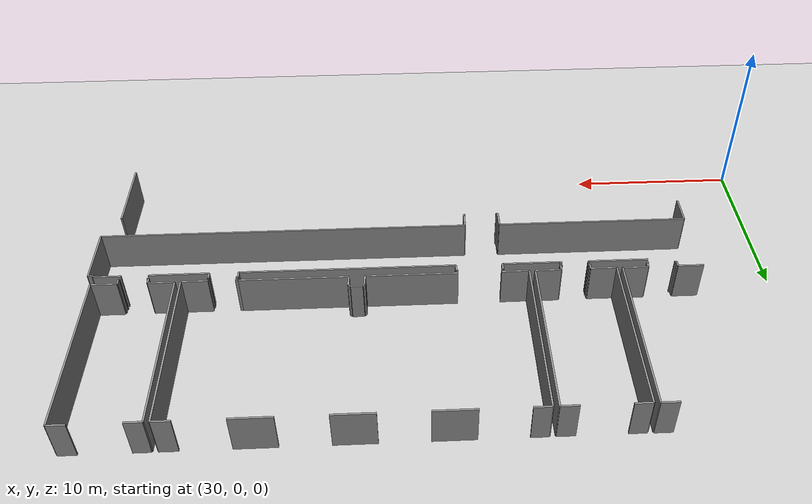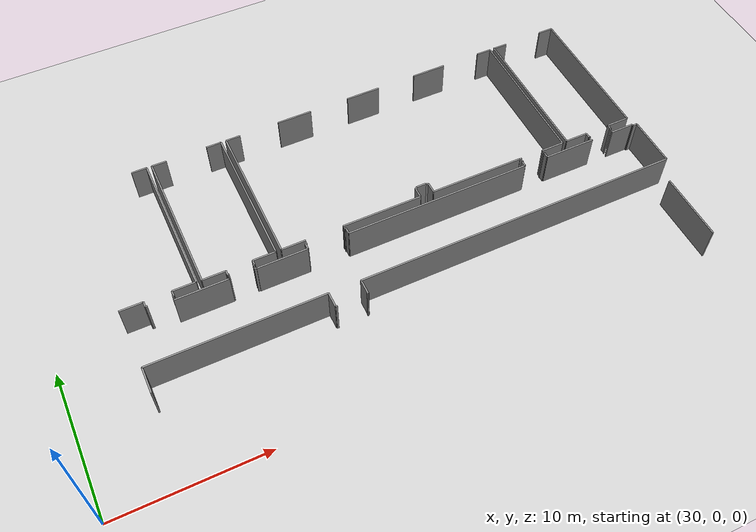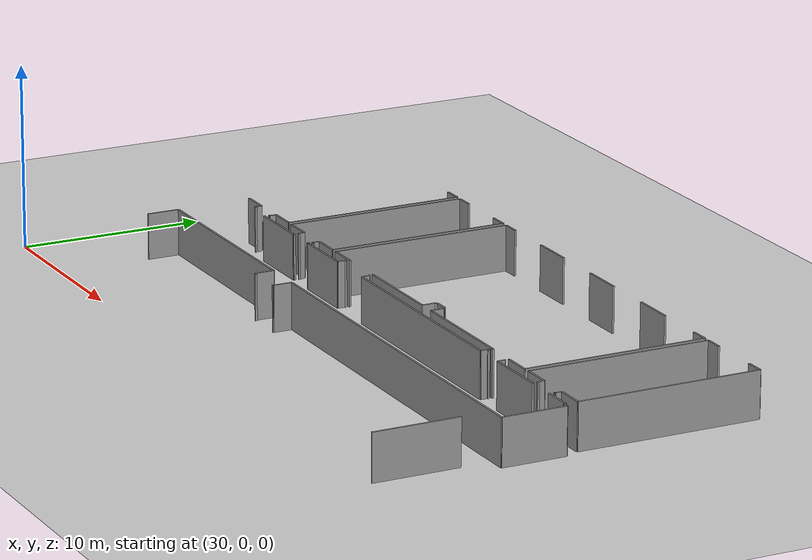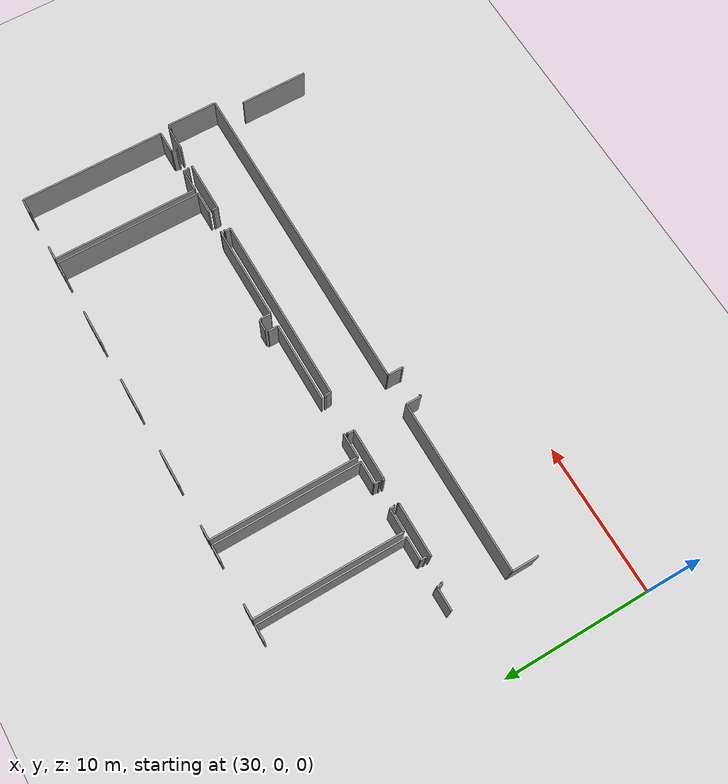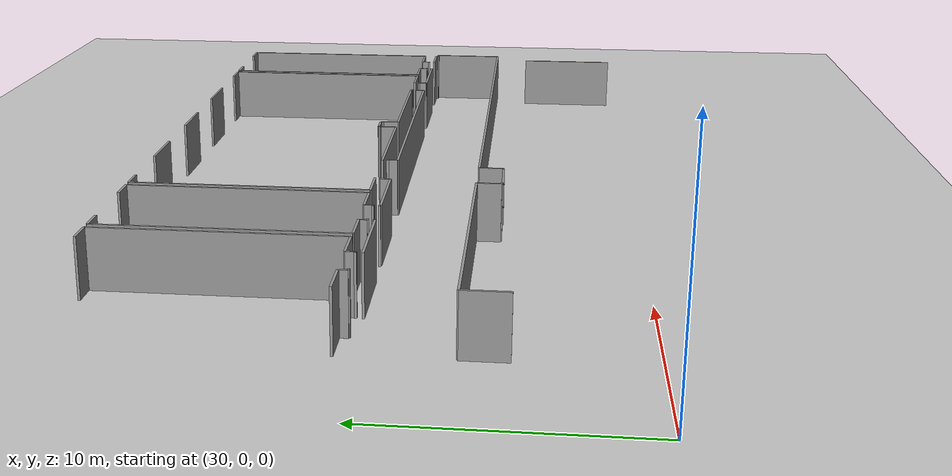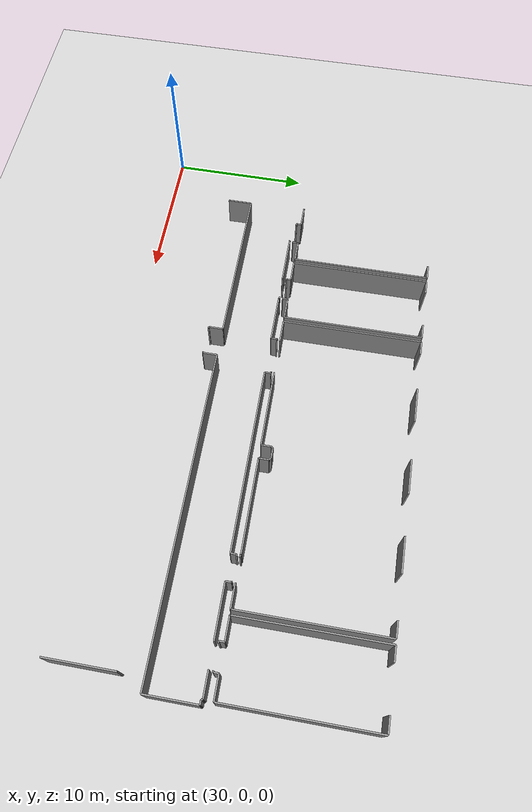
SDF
<sdf version="1.6">
 <world name="default">
  <model name="ground_plane">
   <static>1</static>
   <link name="link">
    <collision name="collision">
     <geometry><plane><normal>0 0 1</normal><size>100 100</size></plane></geometry>
     <surface><friction><ode><mu>100</mu><mu2>50</mu2></ode></friction></surface>
    </collision>
    <visual name="visual">
     <cast_shadows>0</cast_shadows>
     <geometry><plane><normal>0 0 1</normal><size>100 100</size></plane></geometry>
     <material>
      <script><uri>file://media/materials/scripts/gazebo.material</uri><name>Gazebo/Grey</name></script>
     </material>
    </visual>
   </link>
  </model>
  <model name="50055638">
   <static>1</static>
   <link name="Wall_572">
    <collision name="Wall_572_Collision">
     <geometry><box><size>1.04055058815 0.1 2.5</size></box></geometry>
     <pose>0.520275294073 0 1.25 0 0 0</pose>
    </collision>
    <visual name="Wall_572_Visual">
     <pose>0.520275294073 0 1.25 0 0 0</pose>
     <geometry><box><size>1.04055058815 0.1 2.5</size></box></geometry>
     <material>
      <script><uri>file://media/materials/scripts/gazebo.material</uri><name>Gazebo/Grey</name></script>
      <ambient>1 1 1 1</ambient>
     </material>
    </visual>
    <pose>109.051531848 -0.0 0 0 0 0.0</pose>
   </link>
   <link name="Wall_573">
    <collision name="Wall_573_Collision">
     <geometry><box><size>9.92005541469 0.1 2.5</size></box></geometry>
     <pose>4.96002770734 0 1.25 0 0 0</pose>
    </collision>
    <visual name="Wall_573_Visual">
     <pose>4.96002770734 0 1.25 0 0 0</pose>
     <geometry><box><size>9.92005541469 0.1 2.5</size></box></geometry>
     <material>
      <script><uri>file://media/materials/scripts/gazebo.material</uri><name>Gazebo/Grey</name></script>
      <ambient>1 1 1 1</ambient>
     </material>
    </visual>
    <pose>110.092082436 -0.0 0 0 0 -1.57079632679</pose>
   </link>
   <link name="Wall_574">
    <collision name="Wall_574_Collision">
     <geometry><box><size>1.52466652686 0.1 2.5</size></box></geometry>
     <pose>0.762333263429 0 1.25 0 0 0</pose>
    </collision>
    <visual name="Wall_574_Visual">
     <pose>0.762333263429 0 1.25 0 0 0</pose>
     <geometry><box><size>1.52466652686 0.1 2.5</size></box></geometry>
     <material>
      <script><uri>file://media/materials/scripts/gazebo.material</uri><name>Gazebo/Grey</name></script>
      <ambient>1 1 1 1</ambient>
     </material>
    </visual>
    <pose>110.092082436 -9.92005541469 0 0 0 3.14159265359</pose>
   </link>
   <link name="Wall_575">
    <collision name="Wall_575_Collision">
     <geometry><box><size>0.372142680114 0.1 2.5</size></box></geometry>
     <pose>0.186071340057 0 1.25 0 0 0</pose>
    </collision>
    <visual name="Wall_575_Visual">
     <pose>0.186071340057 0 1.25 0 0 0</pose>
     <geometry><box><size>0.372142680114 0.1 2.5</size></box></geometry>
     <material>
      <script><uri>file://media/materials/scripts/gazebo.material</uri><name>Gazebo/Grey</name></script>
      <ambient>1 1 1 1</ambient>
     </material>
    </visual>
    <pose>108.567415909 -9.92005541469 0 0 0 -1.57079632679</pose>
   </link>
   <link name="Wall_576">
    <collision name="Wall_576_Collision">
     <geometry><box><size>0.0939253553975 0.1 2.5</size></box></geometry>
     <pose>0.0469626776988 0 1.25 0 0 0</pose>
    </collision>
    <visual name="Wall_576_Visual">
     <pose>0.0469626776988 0 1.25 0 0 0</pose>
     <geometry><box><size>0.0939253553975 0.1 2.5</size></box></geometry>
     <material>
      <script><uri>file://media/materials/scripts/gazebo.material</uri><name>Gazebo/Grey</name></script>
      <ambient>1 1 1 1</ambient>
     </material>
    </visual>
    <pose>108.567415909 -10.2921980948 0 0 0 3.14159265359</pose>
   </link>
   <link name="Wall_577">
    <collision name="Wall_577_Collision">
     <geometry><box><size>0.124301755858 0.1 2.5</size></box></geometry>
     <pose>0.0621508779288 0 1.25 0 0 0</pose>
    </collision>
    <visual name="Wall_577_Visual">
     <pose>0.0621508779288 0 1.25 0 0 0</pose>
     <geometry><box><size>0.124301755858 0.1 2.5</size></box></geometry>
     <material>
      <script><uri>file://media/materials/scripts/gazebo.material</uri><name>Gazebo/Grey</name></script>
      <ambient>1 1 1 1</ambient>
     </material>
    </visual>
    <pose>106.927090284 -10.2921980948 0 0 0 3.14159265359</pose>
   </link>
   <link name="Wall_578">
    <collision name="Wall_578_Collision">
     <geometry><box><size>0.363372924332 0.1 2.5</size></box></geometry>
     <pose>0.181686462166 0 1.25 0 0 0</pose>
    </collision>
    <visual name="Wall_578_Visual">
     <pose>0.181686462166 0 1.25 0 0 0</pose>
     <geometry><box><size>0.363372924332 0.1 2.5</size></box></geometry>
     <material>
      <script><uri>file://media/materials/scripts/gazebo.material</uri><name>Gazebo/Grey</name></script>
      <ambient>1 1 1 1</ambient>
     </material>
    </visual>
    <pose>106.802788528 -10.2921980948 0 0 0 1.57079632679</pose>
   </link>
   <link name="Wall_579">
    <collision name="Wall_579_Collision">
     <geometry><box><size>1.53343746776 0.1 2.5</size></box></geometry>
     <pose>0.766718733882 0 1.25 0 0 0</pose>
    </collision>
    <visual name="Wall_579_Visual">
     <pose>0.766718733882 0 1.25 0 0 0</pose>
     <geometry><box><size>1.53343746776 0.1 2.5</size></box></geometry>
     <material>
      <script><uri>file://media/materials/scripts/gazebo.material</uri><name>Gazebo/Grey</name></script>
      <ambient>1 1 1 1</ambient>
     </material>
    </visual>
    <pose>106.802788528 -9.92882517047 0 0 0 3.14034938859</pose>
   </link>
   <link name="Wall_580">
    <collision name="Wall_580_Collision">
     <geometry><box><size>9.93186281052 0.1 2.5</size></box></geometry>
     <pose>4.96593140526 0 1.25 0 0 0</pose>
    </collision>
    <visual name="Wall_580_Visual">
     <pose>4.96593140526 0 1.25 0 0 0</pose>
     <geometry><box><size>9.93186281052 0.1 2.5</size></box></geometry>
     <material>
      <script><uri>file://media/materials/scripts/gazebo.material</uri><name>Gazebo/Grey</name></script>
      <ambient>1 1 1 1</ambient>
     </material>
    </visual>
    <pose>110.430671268 -9.94560209457 0 0 0 1.57079632679</pose>
   </link>
   <link name="Wall_581">
    <collision name="Wall_581_Collision">
     <geometry><box><size>1.00483607547 0.1 2.5</size></box></geometry>
     <pose>0.502418037735 0 1.25 0 0 0</pose>
    </collision>
    <visual name="Wall_581_Visual">
     <pose>0.502418037735 0 1.25 0 0 0</pose>
     <geometry><box><size>1.00483607547 0.1 2.5</size></box></geometry>
     <material>
      <script><uri>file://media/materials/scripts/gazebo.material</uri><name>Gazebo/Grey</name></script>
      <ambient>1 1 1 1</ambient>
     </material>
    </visual>
    <pose>110.430671268 -0.0137392840575 0 0 0 0.0</pose>
   </link>
   <link name="Wall_582">
    <collision name="Wall_582_Collision">
     <geometry><box><size>1.04093188188 0.1 2.5</size></box></geometry>
     <pose>0.520465940938 0 1.25 0 0 0</pose>
    </collision>
    <visual name="Wall_582_Visual">
     <pose>0.520465940938 0 1.25 0 0 0</pose>
     <geometry><box><size>1.04093188188 0.1 2.5</size></box></geometry>
     <material>
      <script><uri>file://media/materials/scripts/gazebo.material</uri><name>Gazebo/Grey</name></script>
      <ambient>1 1 1 1</ambient>
     </material>
    </visual>
    <pose>114.210817303 -0.0137392840575 0 0 0 0.0</pose>
   </link>
   <link name="Wall_583">
    <collision name="Wall_583_Collision">
     <geometry><box><size>9.91051036166 0.1 2.5</size></box></geometry>
     <pose>4.95525518083 0 1.25 0 0 0</pose>
    </collision>
    <visual name="Wall_583_Visual">
     <pose>4.95525518083 0 1.25 0 0 0</pose>
     <geometry><box><size>9.91051036166 0.1 2.5</size></box></geometry>
     <material>
      <script><uri>file://media/materials/scripts/gazebo.material</uri><name>Gazebo/Grey</name></script>
      <ambient>1 1 1 1</ambient>
     </material>
    </visual>
    <pose>115.251749185 -0.0137392840575 0 0 0 -1.57079632679</pose>
   </link>
   <link name="Wall_584">
    <collision name="Wall_584_Collision">
     <geometry><box><size>1.54042666768 0.1 2.5</size></box></geometry>
     <pose>0.770213333842 0 1.25 0 0 0</pose>
    </collision>
    <visual name="Wall_584_Visual">
     <pose>0.770213333842 0 1.25 0 0 0</pose>
     <geometry><box><size>1.54042666768 0.1 2.5</size></box></geometry>
     <material>
      <script><uri>file://media/materials/scripts/gazebo.material</uri><name>Gazebo/Grey</name></script>
      <ambient>1 1 1 1</ambient>
     </material>
    </visual>
    <pose>115.251749185 -9.92424964571 0 0 0 3.14159265359</pose>
   </link>
   <link name="Wall_585">
    <collision name="Wall_585_Collision">
     <geometry><box><size>0.348629566787 0.1 2.5</size></box></geometry>
     <pose>0.174314783393 0 1.25 0 0 0</pose>
    </collision>
    <visual name="Wall_585_Visual">
     <pose>0.174314783393 0 1.25 0 0 0</pose>
     <geometry><box><size>0.348629566787 0.1 2.5</size></box></geometry>
     <material>
      <script><uri>file://media/materials/scripts/gazebo.material</uri><name>Gazebo/Grey</name></script>
      <ambient>1 1 1 1</ambient>
     </material>
    </visual>
    <pose>113.711322517 -9.92424964571 0 0 0 -1.57079632679</pose>
   </link>
   <link name="Wall_586">
    <collision name="Wall_586_Collision">
     <geometry><box><size>0.104220286097 0.1 2.5</size></box></geometry>
     <pose>0.0521101430487 0 1.25 0 0 0</pose>
    </collision>
    <visual name="Wall_586_Visual">
     <pose>0.0521101430487 0 1.25 0 0 0</pose>
     <geometry><box><size>0.104220286097 0.1 2.5</size></box></geometry>
     <material>
      <script><uri>file://media/materials/scripts/gazebo.material</uri><name>Gazebo/Grey</name></script>
      <ambient>1 1 1 1</ambient>
     </material>
    </visual>
    <pose>113.711322517 -10.2728792125 0 0 0 3.14159265359</pose>
   </link>
   <link name="Wall_587">
    <collision name="Wall_587_Collision">
     <geometry><box><size>0.0953234324061 0.1 2.5</size></box></geometry>
     <pose>0.0476617162031 0 1.25 0 0 0</pose>
    </collision>
    <visual name="Wall_587_Visual">
     <pose>0.0476617162031 0 1.25 0 0 0</pose>
     <geometry><box><size>0.0953234324061 0.1 2.5</size></box></geometry>
     <material>
      <script><uri>file://media/materials/scripts/gazebo.material</uri><name>Gazebo/Grey</name></script>
      <ambient>1 1 1 1</ambient>
     </material>
    </visual>
    <pose>112.078114375 -10.2728792125 0 0 0 3.14159265359</pose>
   </link>
   <link name="Wall_588">
    <collision name="Wall_588_Collision">
     <geometry><box><size>0.32486225764 0.1 2.5</size></box></geometry>
     <pose>0.16243112882 0 1.25 0 0 0</pose>
    </collision>
    <visual name="Wall_588_Visual">
     <pose>0.16243112882 0 1.25 0 0 0</pose>
     <geometry><box><size>0.32486225764 0.1 2.5</size></box></geometry>
     <material>
      <script><uri>file://media/materials/scripts/gazebo.material</uri><name>Gazebo/Grey</name></script>
      <ambient>1 1 1 1</ambient>
     </material>
    </visual>
    <pose>111.982790943 -10.2728792125 0 0 0 1.57079632679</pose>
   </link>
   <link name="Wall_589">
    <collision name="Wall_589_Collision">
     <geometry><box><size>1.55212155397 0.1 2.5</size></box></geometry>
     <pose>0.776060776984 0 1.25 0 0 0</pose>
    </collision>
    <visual name="Wall_589_Visual">
     <pose>0.776060776984 0 1.25 0 0 0</pose>
     <geometry><box><size>1.55212155397 0.1 2.5</size></box></geometry>
     <material>
      <script><uri>file://media/materials/scripts/gazebo.material</uri><name>Gazebo/Grey</name></script>
      <ambient>1 1 1 1</ambient>
     </material>
    </visual>
    <pose>111.982790943 -9.94801695486 0 0 0 3.14003680814</pose>
   </link>
   <link name="Wall_590">
    <collision name="Wall_590_Collision">
     <geometry><box><size>9.91488252976 0.1 2.5</size></box></geometry>
     <pose>4.95744126488 0 1.25 0 0 0</pose>
    </collision>
    <visual name="Wall_590_Visual">
     <pose>4.95744126488 0 1.25 0 0 0</pose>
     <geometry><box><size>9.91488252976 0.1 2.5</size></box></geometry>
     <material>
      <script><uri>file://media/materials/scripts/gazebo.material</uri><name>Gazebo/Grey</name></script>
      <ambient>1 1 1 1</ambient>
     </material>
    </visual>
    <pose>115.601268437 -9.92780838719 0 0 0 1.57079632679</pose>
   </link>
   <link name="Wall_591">
    <collision name="Wall_591_Collision">
     <geometry><box><size>1.00026055072 0.1 2.5</size></box></geometry>
     <pose>0.500130275358 0 1.25 0 0 0</pose>
    </collision>
    <visual name="Wall_591_Visual">
     <pose>0.500130275358 0 1.25 0 0 0</pose>
     <geometry><box><size>1.00026055072 0.1 2.5</size></box></geometry>
     <material>
      <script><uri>file://media/materials/scripts/gazebo.material</uri><name>Gazebo/Grey</name></script>
      <ambient>1 1 1 1</ambient>
     </material>
    </visual>
    <pose>115.601268437 -0.0129258574343 0 0 0 0.0</pose>
   </link>
   <link name="Wall_592">
    <collision name="Wall_592_Collision">
     <geometry><box><size>2.41358930852 0.1 2.5</size></box></geometry>
     <pose>1.20679465426 0 1.25 0 0 0</pose>
    </collision>
    <visual name="Wall_592_Visual">
     <pose>1.20679465426 0 1.25 0 0 0</pose>
     <geometry><box><size>2.41358930852 0.1 2.5</size></box></geometry>
     <material>
      <script><uri>file://media/materials/scripts/gazebo.material</uri><name>Gazebo/Grey</name></script>
      <ambient>1 1 1 1</ambient>
     </material>
    </visual>
    <pose>119.354469716 -0.0129258574343 0 0 0 0.0</pose>
   </link>
   <link name="Wall_593">
    <collision name="Wall_593_Collision">
     <geometry><box><size>2.39198266385 0.1 2.5</size></box></geometry>
     <pose>1.19599133192 0 1.25 0 0 0</pose>
    </collision>
    <visual name="Wall_593_Visual">
     <pose>1.19599133192 0 1.25 0 0 0</pose>
     <geometry><box><size>2.39198266385 0.1 2.5</size></box></geometry>
     <material>
      <script><uri>file://media/materials/scripts/gazebo.material</uri><name>Gazebo/Grey</name></script>
      <ambient>1 1 1 1</ambient>
     </material>
    </visual>
    <pose>124.532438564 -0.0129258574343 0 0 0 0.0</pose>
   </link>
   <link name="Wall_594">
    <collision name="Wall_594_Collision">
     <geometry><box><size>2.37291797736 0.1 2.5</size></box></geometry>
     <pose>1.18645898868 0 1.25 0 0 0</pose>
    </collision>
    <visual name="Wall_594_Visual">
     <pose>1.18645898868 0 1.25 0 0 0</pose>
     <geometry><box><size>2.37291797736 0.1 2.5</size></box></geometry>
     <material>
      <script><uri>file://media/materials/scripts/gazebo.material</uri><name>Gazebo/Grey</name></script>
      <ambient>1 1 1 1</ambient>
     </material>
    </visual>
    <pose>129.686258809 -0.0129258574343 0 0 0 0.0</pose>
   </link>
   <link name="Wall_595">
    <collision name="Wall_595_Collision">
     <geometry><box><size>1.05364167286 0.1 2.5</size></box></geometry>
     <pose>0.526820836431 0 1.25 0 0 0</pose>
    </collision>
    <visual name="Wall_595_Visual">
     <pose>0.526820836431 0 1.25 0 0 0</pose>
     <geometry><box><size>1.05364167286 0.1 2.5</size></box></geometry>
     <material>
      <script><uri>file://media/materials/scripts/gazebo.material</uri><name>Gazebo/Grey</name></script>
      <ambient>1 1 1 1</ambient>
     </material>
    </visual>
    <pose>134.814659473 -0.0129258574343 0 0 0 0.0</pose>
   </link>
   <link name="Wall_596">
    <collision name="Wall_596_Collision">
     <geometry><box><size>9.93648917444 0.1 2.5</size></box></geometry>
     <pose>4.96824458722 0 1.25 0 0 0</pose>
    </collision>
    <visual name="Wall_596_Visual">
     <pose>4.96824458722 0 1.25 0 0 0</pose>
     <geometry><box><size>9.93648917444 0.1 2.5</size></box></geometry>
     <material>
      <script><uri>file://media/materials/scripts/gazebo.material</uri><name>Gazebo/Grey</name></script>
      <ambient>1 1 1 1</ambient>
     </material>
    </visual>
    <pose>135.868301146 -0.0129258574343 0 0 0 -1.57079632679</pose>
   </link>
   <link name="Wall_597">
    <collision name="Wall_597_Collision">
     <geometry><box><size>1.57982701974 0.1 2.5</size></box></geometry>
     <pose>0.789913509872 0 1.25 0 0 0</pose>
    </collision>
    <visual name="Wall_597_Visual">
     <pose>0.789913509872 0 1.25 0 0 0</pose>
     <geometry><box><size>1.57982701974 0.1 2.5</size></box></geometry>
     <material>
      <script><uri>file://media/materials/scripts/gazebo.material</uri><name>Gazebo/Grey</name></script>
      <ambient>1 1 1 1</ambient>
     </material>
    </visual>
    <pose>135.868301146 -9.94941503187 0 0 0 3.14159265359</pose>
   </link>
   <link name="Wall_598">
    <collision name="Wall_598_Collision">
     <geometry><box><size>0.169040220134 0.1 2.5</size></box></geometry>
     <pose>0.0845201100668 0 1.25 0 0 0</pose>
    </collision>
    <visual name="Wall_598_Visual">
     <pose>0.0845201100668 0 1.25 0 0 0</pose>
     <geometry><box><size>0.169040220134 0.1 2.5</size></box></geometry>
     <material>
      <script><uri>file://media/materials/scripts/gazebo.material</uri><name>Gazebo/Grey</name></script>
      <ambient>1 1 1 1</ambient>
     </material>
    </visual>
    <pose>132.718814939 -9.94941503187 0 0 0 3.14159265359</pose>
   </link>
   <link name="Wall_599">
    <collision name="Wall_599_Collision">
     <geometry><box><size>0.0275802464428 0.1 2.5</size></box></geometry>
     <pose>0.0137901232214 0 1.25 0 0 0</pose>
    </collision>
    <visual name="Wall_599_Visual">
     <pose>0.0137901232214 0 1.25 0 0 0</pose>
     <geometry><box><size>0.0275802464428 0.1 2.5</size></box></geometry>
     <material>
      <script><uri>file://media/materials/scripts/gazebo.material</uri><name>Gazebo/Grey</name></script>
      <ambient>1 1 1 1</ambient>
     </material>
    </visual>
    <pose>132.549774719 -9.94941503187 0 0 0 1.57079632679</pose>
   </link>
   <link name="Wall_600">
    <collision name="Wall_600_Collision">
     <geometry><box><size>6.38412801301 0.1 2.5</size></box></geometry>
     <pose>3.19206400651 0 1.25 0 0 0</pose>
    </collision>
    <visual name="Wall_600_Visual">
     <pose>3.19206400651 0 1.25 0 0 0</pose>
     <geometry><box><size>6.38412801301 0.1 2.5</size></box></geometry>
     <material>
      <script><uri>file://media/materials/scripts/gazebo.material</uri><name>Gazebo/Grey</name></script>
      <ambient>1 1 1 1</ambient>
     </material>
    </visual>
    <pose>132.549774719 -9.92183478543 0 0 0 3.14159265359</pose>
   </link>
   <link name="Wall_601">
    <collision name="Wall_601_Collision">
     <geometry><box><size>0.699673993861 0.1 2.5</size></box></geometry>
     <pose>0.349836996931 0 1.25 0 0 0</pose>
    </collision>
    <visual name="Wall_601_Visual">
     <pose>0.349836996931 0 1.25 0 0 0</pose>
     <geometry><box><size>0.699673993861 0.1 2.5</size></box></geometry>
     <material>
      <script><uri>file://media/materials/scripts/gazebo.material</uri><name>Gazebo/Grey</name></script>
      <ambient>1 1 1 1</ambient>
     </material>
    </visual>
    <pose>126.165646706 -9.92183478543 0 0 0 1.57079632679</pose>
   </link>
   <link name="Wall_602">
    <collision name="Wall_602_Collision">
     <geometry><box><size>0.172348889862 0.1 2.5</size></box></geometry>
     <pose>0.086174444931 0 1.25 0 0 0</pose>
    </collision>
    <visual name="Wall_602_Visual">
     <pose>0.086174444931 0 1.25 0 0 0</pose>
     <geometry><box><size>0.172348889862 0.1 2.5</size></box></geometry>
     <material>
      <script><uri>file://media/materials/scripts/gazebo.material</uri><name>Gazebo/Grey</name></script>
      <ambient>1 1 1 1</ambient>
     </material>
    </visual>
    <pose>126.165646706 -9.22216079157 0 0 0 2.43344630464</pose>
   </link>
   <link name="Wall_603">
    <collision name="Wall_603_Collision">
     <geometry><box><size>0.700309483411 0.1 2.5</size></box></geometry>
     <pose>0.350154741705 0 1.25 0 0 0</pose>
    </collision>
    <visual name="Wall_603_Visual">
     <pose>0.350154741705 0 1.25 0 0 0</pose>
     <geometry><box><size>0.700309483411 0.1 2.5</size></box></geometry>
     <material>
      <script><uri>file://media/materials/scripts/gazebo.material</uri><name>Gazebo/Grey</name></script>
      <ambient>1 1 1 1</ambient>
     </material>
    </visual>
    <pose>126.034735859 -9.11006043506 0 0 0 3.14159265359</pose>
   </link>
   <link name="Wall_604">
    <collision name="Wall_604_Collision">
     <geometry><box><size>0.160254740128 0.1 2.5</size></box></geometry>
     <pose>0.080127370064 0 1.25 0 0 0</pose>
    </collision>
    <visual name="Wall_604_Visual">
     <pose>0.080127370064 0 1.25 0 0 0</pose>
     <geometry><box><size>0.160254740128 0.1 2.5</size></box></geometry>
     <material>
      <script><uri>file://media/materials/scripts/gazebo.material</uri><name>Gazebo/Grey</name></script>
      <ambient>1 1 1 1</ambient>
     </material>
    </visual>
    <pose>125.334426375 -9.11006043506 0 0 0 -2.34329559822</pose>
   </link>
   <link name="Wall_605">
    <collision name="Wall_605_Collision">
     <geometry><box><size>0.696623644024 0.1 2.5</size></box></geometry>
     <pose>0.348311822012 0 1.25 0 0 0</pose>
    </collision>
    <visual name="Wall_605_Visual">
     <pose>0.348311822012 0 1.25 0 0 0</pose>
     <geometry><box><size>0.696623644024 0.1 2.5</size></box></geometry>
     <material>
      <script><uri>file://media/materials/scripts/gazebo.material</uri><name>Gazebo/Grey</name></script>
      <ambient>1 1 1 1</ambient>
     </material>
    </visual>
    <pose>125.222580215 -9.22482984767 0 0 0 -1.57079632679</pose>
   </link>
   <link name="Wall_606">
    <collision name="Wall_606_Collision">
     <geometry><box><size>5.44995837543 0.1 2.5</size></box></geometry>
     <pose>2.72497918772 0 1.25 0 0 0</pose>
    </collision>
    <visual name="Wall_606_Visual">
     <pose>2.72497918772 0 1.25 0 0 0</pose>
     <geometry><box><size>5.44995837543 0.1 2.5</size></box></geometry>
     <material>
      <script><uri>file://media/materials/scripts/gazebo.material</uri><name>Gazebo/Grey</name></script>
      <ambient>1 1 1 1</ambient>
     </material>
    </visual>
    <pose>125.222580215 -9.9214534917 0 0 0 3.14159265359</pose>
   </link>
   <link name="Wall_607">
    <collision name="Wall_607_Collision">
     <geometry><box><size>1.63322050546 0.1 2.5</size></box></geometry>
     <pose>0.816610252728 0 1.25 0 0 0</pose>
    </collision>
    <visual name="Wall_607_Visual">
     <pose>0.816610252728 0 1.25 0 0 0</pose>
     <geometry><box><size>1.63322050546 0.1 2.5</size></box></geometry>
     <material>
      <script><uri>file://media/materials/scripts/gazebo.material</uri><name>Gazebo/Grey</name></script>
      <ambient>1 1 1 1</ambient>
     </material>
    </visual>
    <pose>117.234476579 -9.9214534917 0 0 0 -3.13770162264</pose>
   </link>
   <link name="Wall_608">
    <collision name="Wall_608_Collision">
     <geometry><box><size>9.91394200522 0.1 2.5</size></box></geometry>
     <pose>4.95697100261 0 1.25 0 0 0</pose>
    </collision>
    <visual name="Wall_608_Visual">
     <pose>4.95697100261 0 1.25 0 0 0</pose>
     <geometry><box><size>9.91394200522 0.1 2.5</size></box></geometry>
     <material>
      <script><uri>file://media/materials/scripts/gazebo.material</uri><name>Gazebo/Grey</name></script>
      <ambient>1 1 1 1</ambient>
     </material>
    </visual>
    <pose>136.202568649 -9.9241225478 0 0 0 1.57079632679</pose>
   </link>
   <link name="Wall_609">
    <collision name="Wall_609_Collision">
     <geometry><box><size>0.99517663432 0.1 2.5</size></box></geometry>
     <pose>0.49758831716 0 1.25 0 0 0</pose>
    </collision>
    <visual name="Wall_609_Visual">
     <pose>0.49758831716 0 1.25 0 0 0</pose>
     <geometry><box><size>0.99517663432 0.1 2.5</size></box></geometry>
     <material>
      <script><uri>file://media/materials/scripts/gazebo.material</uri><name>Gazebo/Grey</name></script>
      <ambient>1 1 1 1</ambient>
     </material>
    </visual>
    <pose>136.202568649 -0.010180542581 0 0 0 0.0</pose>
   </link>
   <link name="Wall_610">
    <collision name="Wall_610_Collision">
     <geometry><box><size>1.03076404909 0.1 2.5</size></box></geometry>
     <pose>0.515382024543 0 1.25 0 0 0</pose>
    </collision>
    <visual name="Wall_610_Visual">
     <pose>0.515382024543 0 1.25 0 0 0</pose>
     <geometry><box><size>1.03076404909 0.1 2.5</size></box></geometry>
     <material>
      <script><uri>file://media/materials/scripts/gazebo.material</uri><name>Gazebo/Grey</name></script>
      <ambient>1 1 1 1</ambient>
     </material>
    </visual>
    <pose>140.002796154 -0.010180542581 0 0 0 0.0</pose>
   </link>
   <link name="Wall_611">
    <collision name="Wall_611_Collision">
     <geometry><box><size>9.92067819445 0.1 2.5</size></box></geometry>
     <pose>4.96033909722 0 1.25 0 0 0</pose>
    </collision>
    <visual name="Wall_611_Visual">
     <pose>4.96033909722 0 1.25 0 0 0</pose>
     <geometry><box><size>9.92067819445 0.1 2.5</size></box></geometry>
     <material>
      <script><uri>file://media/materials/scripts/gazebo.material</uri><name>Gazebo/Grey</name></script>
      <ambient>1 1 1 1</ambient>
     </material>
    </visual>
    <pose>141.033560203 -0.010180542581 0 0 0 -1.57079632679</pose>
   </link>
   <link name="Wall_612">
    <collision name="Wall_612_Collision">
     <geometry><box><size>1.54296862588 0.1 2.5</size></box></geometry>
     <pose>0.77148431294 0 1.25 0 0 0</pose>
    </collision>
    <visual name="Wall_612_Visual">
     <pose>0.77148431294 0 1.25 0 0 0</pose>
     <geometry><box><size>1.54296862588 0.1 2.5</size></box></geometry>
     <material>
      <script><uri>file://media/materials/scripts/gazebo.material</uri><name>Gazebo/Grey</name></script>
      <ambient>1 1 1 1</ambient>
     </material>
    </visual>
    <pose>141.033560203 -9.93085873703 0 0 0 3.14159265359</pose>
   </link>
   <link name="Wall_613">
    <collision name="Wall_613_Collision">
     <geometry><box><size>0.350536035435 0.1 2.5</size></box></geometry>
     <pose>0.175268017717 0 1.25 0 0 0</pose>
    </collision>
    <visual name="Wall_613_Visual">
     <pose>0.175268017717 0 1.25 0 0 0</pose>
     <geometry><box><size>0.350536035435 0.1 2.5</size></box></geometry>
     <material>
      <script><uri>file://media/materials/scripts/gazebo.material</uri><name>Gazebo/Grey</name></script>
      <ambient>1 1 1 1</ambient>
     </material>
    </visual>
    <pose>139.490591577 -9.93085873703 0 0 0 -1.57079632679</pose>
   </link>
   <link name="Wall_614">
    <collision name="Wall_614_Collision">
     <geometry><box><size>0.0902395160111 0.1 2.5</size></box></geometry>
     <pose>0.0451197580056 0 1.25 0 0 0</pose>
    </collision>
    <visual name="Wall_614_Visual">
     <pose>0.0451197580056 0 1.25 0 0 0</pose>
     <geometry><box><size>0.0902395160111 0.1 2.5</size></box></geometry>
     <material>
      <script><uri>file://media/materials/scripts/gazebo.material</uri><name>Gazebo/Grey</name></script>
      <ambient>1 1 1 1</ambient>
     </material>
    </visual>
    <pose>139.490591577 -10.2813947725 0 0 0 3.14159265359</pose>
   </link>
   <link name="Wall_615">
    <collision name="Wall_615_Collision">
     <geometry><box><size>0.1016783279 0.1 2.5</size></box></geometry>
     <pose>0.05083916395 0 1.25 0 0 0</pose>
    </collision>
    <visual name="Wall_615_Visual">
     <pose>0.05083916395 0 1.25 0 0 0</pose>
     <geometry><box><size>0.1016783279 0.1 2.5</size></box></geometry>
     <material>
      <script><uri>file://media/materials/scripts/gazebo.material</uri><name>Gazebo/Grey</name></script>
      <ambient>1 1 1 1</ambient>
     </material>
    </visual>
    <pose>137.857383435 -10.2813947725 0 0 0 3.14159265359</pose>
   </link>
   <link name="Wall_616">
    <collision name="Wall_616_Collision">
     <geometry><box><size>0.350536035435 0.1 2.5</size></box></geometry>
     <pose>0.175268017717 0 1.25 0 0 0</pose>
    </collision>
    <visual name="Wall_616_Visual">
     <pose>0.175268017717 0 1.25 0 0 0</pose>
     <geometry><box><size>0.350536035435 0.1 2.5</size></box></geometry>
     <material>
      <script><uri>file://media/materials/scripts/gazebo.material</uri><name>Gazebo/Grey</name></script>
      <ambient>1 1 1 1</ambient>
     </material>
    </visual>
    <pose>137.755705107 -10.2813947725 0 0 0 1.57079632679</pose>
   </link>
   <link name="Wall_617">
    <collision name="Wall_617_Collision">
     <geometry><box><size>1.55315106654 0.1 2.5</size></box></geometry>
     <pose>0.776575533271 0 1.25 0 0 0</pose>
    </collision>
    <visual name="Wall_617_Visual">
     <pose>0.776575533271 0 1.25 0 0 0</pose>
     <geometry><box><size>1.55315106654 0.1 2.5</size></box></geometry>
     <material>
      <script><uri>file://media/materials/scripts/gazebo.material</uri><name>Gazebo/Grey</name></script>
      <ambient>1 1 1 1</ambient>
     </material>
    </visual>
    <pose>137.755705107 -9.93085873703 0 0 0 3.13725552858</pose>
   </link>
   <link name="Wall_626">
    <collision name="Wall_626_Collision">
     <geometry><box><size>4.64237825609 0.1 2.5</size></box></geometry>
     <pose>2.32118912804 0 1.25 0 0 0</pose>
    </collision>
    <visual name="Wall_626_Visual">
     <pose>2.32118912804 0 1.25 0 0 0</pose>
     <geometry><box><size>4.64237825609 0.1 2.5</size></box></geometry>
     <material>
      <script><uri>file://media/materials/scripts/gazebo.material</uri><name>Gazebo/Grey</name></script>
      <ambient>1 1 1 1</ambient>
     </material>
    </visual>
    <pose>140.399341633 -15.7548662612 0 0 0 -1.57079632679</pose>
   </link>
   <link name="Wall_633">
    <collision name="Wall_633_Collision">
     <geometry><box><size>3.52772958649 0.1 2.5</size></box></geometry>
     <pose>1.76386479324 0 1.25 0 0 0</pose>
    </collision>
    <visual name="Wall_633_Visual">
     <pose>1.76386479324 0 1.25 0 0 0</pose>
     <geometry><box><size>3.52772958649 0.1 2.5</size></box></geometry>
     <material>
      <script><uri>file://media/materials/scripts/gazebo.material</uri><name>Gazebo/Grey</name></script>
      <ambient>1 1 1 1</ambient>
     </material>
    </visual>
    <pose>108.455061357 -10.5672379718 0 0 0 0.0</pose>
   </link>
   <link name="Wall_634">
    <collision name="Wall_634_Collision">
     <geometry><box><size>0.0301222046403 0.1 2.5</size></box></geometry>
     <pose>0.0150611023202 0 1.25 0 0 0</pose>
    </collision>
    <visual name="Wall_634_Visual">
     <pose>0.0150611023202 0 1.25 0 0 0</pose>
     <geometry><box><size>0.0301222046403 0.1 2.5</size></box></geometry>
     <material>
      <script><uri>file://media/materials/scripts/gazebo.material</uri><name>Gazebo/Grey</name></script>
      <ambient>1 1 1 1</ambient>
     </material>
    </visual>
    <pose>111.982790943 -10.5672379718 0 0 0 1.57079632679</pose>
   </link>
   <link name="Wall_635">
    <collision name="Wall_635_Collision">
     <geometry><box><size>0.0737167877274 0.1 2.5</size></box></geometry>
     <pose>0.0368583938637 0 1.25 0 0 0</pose>
    </collision>
    <visual name="Wall_635_Visual">
     <pose>0.0368583938637 0 1.25 0 0 0</pose>
     <geometry><box><size>0.0737167877274 0.1 2.5</size></box></geometry>
     <material>
      <script><uri>file://media/materials/scripts/gazebo.material</uri><name>Gazebo/Grey</name></script>
      <ambient>1 1 1 1</ambient>
     </material>
    </visual>
    <pose>111.982790943 -10.5371157671 0 0 0 0.0</pose>
   </link>
   <link name="Wall_636">
    <collision name="Wall_636_Collision">
     <geometry><box><size>0.144891617257 0.1 2.5</size></box></geometry>
     <pose>0.0724458086287 0 1.25 0 0 0</pose>
    </collision>
    <visual name="Wall_636_Visual">
     <pose>0.0724458086287 0 1.25 0 0 0</pose>
     <geometry><box><size>0.144891617257 0.1 2.5</size></box></geometry>
     <material>
      <script><uri>file://media/materials/scripts/gazebo.material</uri><name>Gazebo/Grey</name></script>
      <ambient>1 1 1 1</ambient>
     </material>
    </visual>
    <pose>113.584224607 -10.5371157671 0 0 0 0.0</pose>
   </link>
   <link name="Wall_637">
    <collision name="Wall_637_Collision">
     <geometry><box><size>0.0326641628378 0.1 2.5</size></box></geometry>
     <pose>0.0163320814189 0 1.25 0 0 0</pose>
    </collision>
    <visual name="Wall_637_Visual">
     <pose>0.0163320814189 0 1.25 0 0 0</pose>
     <geometry><box><size>0.0326641628378 0.1 2.5</size></box></geometry>
     <material>
      <script><uri>file://media/materials/scripts/gazebo.material</uri><name>Gazebo/Grey</name></script>
      <ambient>1 1 1 1</ambient>
     </material>
    </visual>
    <pose>113.729116225 -10.5371157671 0 0 0 -1.57079632679</pose>
   </link>
   <link name="Wall_638">
    <collision name="Wall_638_Collision">
     <geometry><box><size>3.38970125636 0.1 2.5</size></box></geometry>
     <pose>1.69485062818 0 1.25 0 0 0</pose>
    </collision>
    <visual name="Wall_638_Visual">
     <pose>1.69485062818 0 1.25 0 0 0</pose>
     <geometry><box><size>3.38970125636 0.1 2.5</size></box></geometry>
     <material>
      <script><uri>file://media/materials/scripts/gazebo.material</uri><name>Gazebo/Grey</name></script>
      <ambient>1 1 1 1</ambient>
     </material>
    </visual>
    <pose>113.729116225 -10.56977993 0 0 0 0.0</pose>
   </link>
   <link name="Wall_639">
    <collision name="Wall_639_Collision">
     <geometry><box><size>0.421075375415 0.1 2.5</size></box></geometry>
     <pose>0.210537687708 0 1.25 0 0 0</pose>
    </collision>
    <visual name="Wall_639_Visual">
     <pose>0.210537687708 0 1.25 0 0 0</pose>
     <geometry><box><size>0.421075375415 0.1 2.5</size></box></geometry>
     <material>
      <script><uri>file://media/materials/scripts/gazebo.material</uri><name>Gazebo/Grey</name></script>
      <ambient>1 1 1 1</ambient>
     </material>
    </visual>
    <pose>117.118817481 -10.56977993 0 0 0 1.57079632679</pose>
   </link>
   <link name="Wall_640">
    <collision name="Wall_640_Collision">
     <geometry><box><size>0.100407348801 0.1 2.5</size></box></geometry>
     <pose>0.0502036744006 0 1.25 0 0 0</pose>
    </collision>
    <visual name="Wall_640_Visual">
     <pose>0.0502036744006 0 1.25 0 0 0</pose>
     <geometry><box><size>0.100407348801 0.1 2.5</size></box></geometry>
     <material>
      <script><uri>file://media/materials/scripts/gazebo.material</uri><name>Gazebo/Grey</name></script>
      <ambient>1 1 1 1</ambient>
     </material>
    </visual>
    <pose>117.118817481 -10.1487045546 0 0 0 0.0</pose>
   </link>
   <link name="Wall_641">
    <collision name="Wall_641_Collision">
     <geometry><box><size>0.106762244295 0.1 2.5</size></box></geometry>
     <pose>0.0533811221474 0 1.25 0 0 0</pose>
    </collision>
    <visual name="Wall_641_Visual">
     <pose>0.0533811221474 0 1.25 0 0 0</pose>
     <geometry><box><size>0.106762244295 0.1 2.5</size></box></geometry>
     <material>
      <script><uri>file://media/materials/scripts/gazebo.material</uri><name>Gazebo/Grey</name></script>
      <ambient>1 1 1 1</ambient>
     </material>
    </visual>
    <pose>119.763724986 -10.1487045546 0 0 0 0.0</pose>
   </link>
   <link name="Wall_642">
    <collision name="Wall_642_Collision">
     <geometry><box><size>0.428828347918 0.1 2.5</size></box></geometry>
     <pose>0.214414173959 0 1.25 0 0 0</pose>
    </collision>
    <visual name="Wall_642_Visual">
     <pose>0.214414173959 0 1.25 0 0 0</pose>
     <geometry><box><size>0.428828347918 0.1 2.5</size></box></geometry>
     <material>
      <script><uri>file://media/materials/scripts/gazebo.material</uri><name>Gazebo/Grey</name></script>
      <ambient>1 1 1 1</ambient>
     </material>
    </visual>
    <pose>119.87048723 -10.1487045546 0 0 0 -1.57079632679</pose>
   </link>
   <link name="Wall_643">
    <collision name="Wall_643_Collision">
     <geometry><box><size>12.7225007785 0.1 2.5</size></box></geometry>
     <pose>6.36125038924 0 1.25 0 0 0</pose>
    </collision>
    <visual name="Wall_643_Visual">
     <pose>6.36125038924 0 1.25 0 0 0</pose>
     <geometry><box><size>12.7225007785 0.1 2.5</size></box></geometry>
     <material>
      <script><uri>file://media/materials/scripts/gazebo.material</uri><name>Gazebo/Grey</name></script>
      <ambient>1 1 1 1</ambient>
     </material>
    </visual>
    <pose>119.87048723 -10.5775329025 0 0 0 0.0</pose>
   </link>
   <link name="Wall_644">
    <collision name="Wall_644_Collision">
     <geometry><box><size>0.397308066269 0.1 2.5</size></box></geometry>
     <pose>0.198654033134 0 1.25 0 0 0</pose>
    </collision>
    <visual name="Wall_644_Visual">
     <pose>0.198654033134 0 1.25 0 0 0</pose>
     <geometry><box><size>0.397308066269 0.1 2.5</size></box></geometry>
     <material>
      <script><uri>file://media/materials/scripts/gazebo.material</uri><name>Gazebo/Grey</name></script>
      <ambient>1 1 1 1</ambient>
     </material>
    </visual>
    <pose>132.592988008 -10.5775329025 0 0 0 1.57079632679</pose>
   </link>
   <link name="Wall_645">
    <collision name="Wall_645_Collision">
     <geometry><box><size>0.105491265196 0.1 2.5</size></box></geometry>
     <pose>0.0527456325981 0 1.25 0 0 0</pose>
    </collision>
    <visual name="Wall_645_Visual">
     <pose>0.0527456325981 0 1.25 0 0 0</pose>
     <geometry><box><size>0.105491265196 0.1 2.5</size></box></geometry>
     <material>
      <script><uri>file://media/materials/scripts/gazebo.material</uri><name>Gazebo/Grey</name></script>
      <ambient>1 1 1 1</ambient>
     </material>
    </visual>
    <pose>132.592988008 -10.1802248362 0 0 0 0.0</pose>
   </link>
   <link name="Wall_646">
    <collision name="Wall_646_Collision">
     <geometry><box><size>0.066090913135 0.1 2.5</size></box></geometry>
     <pose>0.0330454565675 0 1.25 0 0 0</pose>
    </collision>
    <visual name="Wall_646_Visual">
     <pose>0.0330454565675 0 1.25 0 0 0</pose>
     <geometry><box><size>0.066090913135 0.1 2.5</size></box></geometry>
     <material>
      <script><uri>file://media/materials/scripts/gazebo.material</uri><name>Gazebo/Grey</name></script>
      <ambient>1 1 1 1</ambient>
     </material>
    </visual>
    <pose>134.243989858 -10.1802248362 0 0 0 0.0</pose>
   </link>
   <link name="Wall_647">
    <collision name="Wall_647_Collision">
     <geometry><box><size>0.388665408397 0.1 2.5</size></box></geometry>
     <pose>0.194332704199 0 1.25 0 0 0</pose>
    </collision>
    <visual name="Wall_647_Visual">
     <pose>0.194332704199 0 1.25 0 0 0</pose>
     <geometry><box><size>0.388665408397 0.1 2.5</size></box></geometry>
     <material>
      <script><uri>file://media/materials/scripts/gazebo.material</uri><name>Gazebo/Grey</name></script>
      <ambient>1 1 1 1</ambient>
     </material>
    </visual>
    <pose>134.310080771 -10.1802248362 0 0 0 -1.57079632679</pose>
   </link>
   <link name="Wall_648">
    <collision name="Wall_648_Collision">
     <geometry><box><size>3.51807014534 0.1 2.5</size></box></geometry>
     <pose>1.75903507267 0 1.25 0 0 0</pose>
    </collision>
    <visual name="Wall_648_Visual">
     <pose>1.75903507267 0 1.25 0 0 0</pose>
     <geometry><box><size>3.51807014534 0.1 2.5</size></box></geometry>
     <material>
      <script><uri>file://media/materials/scripts/gazebo.material</uri><name>Gazebo/Grey</name></script>
      <ambient>1 1 1 1</ambient>
     </material>
    </visual>
    <pose>134.310080771 -10.5688902446 0 0 0 0.0</pose>
   </link>
   <link name="Wall_649">
    <collision name="Wall_649_Collision">
     <geometry><box><size>1.6268532464 0.1 2.5</size></box></geometry>
     <pose>0.813426623199 0 1.25 0 0 0</pose>
    </collision>
    <visual name="Wall_649_Visual">
     <pose>0.813426623199 0 1.25 0 0 0</pose>
     <geometry><box><size>1.6268532464 0.1 2.5</size></box></geometry>
     <material>
      <script><uri>file://media/materials/scripts/gazebo.material</uri><name>Gazebo/Grey</name></script>
      <ambient>1 1 1 1</ambient>
     </material>
    </visual>
    <pose>139.385100312 -10.5688902446 0 0 0 0.0</pose>
   </link>
   <link name="Wall_650">
    <collision name="Wall_650_Collision">
     <geometry><box><size>0.102695111179 0.1 2.5</size></box></geometry>
     <pose>0.0513475555894 0 1.25 0 0 0</pose>
    </collision>
    <visual name="Wall_650_Visual">
     <pose>0.0513475555894 0 1.25 0 0 0</pose>
     <geometry><box><size>0.102695111179 0.1 2.5</size></box></geometry>
     <material>
      <script><uri>file://media/materials/scripts/gazebo.material</uri><name>Gazebo/Grey</name></script>
      <ambient>1 1 1 1</ambient>
     </material>
    </visual>
    <pose>141.011953558 -10.5688902446 0 0 0 -1.57079632679</pose>
   </link>
   <link name="Wall_651">
    <collision name="Wall_651_Collision">
     <geometry><box><size>0.311389879193 0.1 2.5</size></box></geometry>
     <pose>0.155694939597 0 1.25 0 0 0</pose>
    </collision>
    <visual name="Wall_651_Visual">
     <pose>0.155694939597 0 1.25 0 0 0</pose>
     <geometry><box><size>0.311389879193 0.1 2.5</size></box></geometry>
     <material>
      <script><uri>file://media/materials/scripts/gazebo.material</uri><name>Gazebo/Grey</name></script>
      <ambient>1 1 1 1</ambient>
     </material>
    </visual>
    <pose>141.011953558 -10.6715853558 0 0 0 0.0</pose>
   </link>
   <link name="Wall_652">
    <collision name="Wall_652_Collision">
     <geometry><box><size>3.44600563044 0.1 2.5</size></box></geometry>
     <pose>1.72300281522 0 1.25 0 0 0</pose>
    </collision>
    <visual name="Wall_652_Visual">
     <pose>1.72300281522 0 1.25 0 0 0</pose>
     <geometry><box><size>3.44600563044 0.1 2.5</size></box></geometry>
     <material>
      <script><uri>file://media/materials/scripts/gazebo.material</uri><name>Gazebo/Grey</name></script>
      <ambient>1 1 1 1</ambient>
     </material>
    </visual>
    <pose>141.323343438 -10.6715853558 0 0 0 -1.57079632679</pose>
   </link>
   <link name="Wall_653">
    <collision name="Wall_653_Collision">
     <geometry><box><size>22.2345083535 0.1 2.5</size></box></geometry>
     <pose>11.1172541768 0 1.25 0 0 0</pose>
    </collision>
    <visual name="Wall_653_Visual">
     <pose>11.1172541768 0 1.25 0 0 0</pose>
     <geometry><box><size>22.2345083535 0.1 2.5</size></box></geometry>
     <material>
      <script><uri>file://media/materials/scripts/gazebo.material</uri><name>Gazebo/Grey</name></script>
      <ambient>1 1 1 1</ambient>
     </material>
    </visual>
    <pose>141.323343438 -14.1175909862 0 0 0 3.14159265359</pose>
   </link>
   <link name="Wall_654">
    <collision name="Wall_654_Collision">
     <geometry><box><size>1.01627488736 0.1 2.5</size></box></geometry>
     <pose>0.50813744368 0 1.25 0 0 0</pose>
    </collision>
    <visual name="Wall_654_Visual">
     <pose>0.50813744368 0 1.25 0 0 0</pose>
     <geometry><box><size>1.01627488736 0.1 2.5</size></box></geometry>
     <material>
      <script><uri>file://media/materials/scripts/gazebo.material</uri><name>Gazebo/Grey</name></script>
      <ambient>1 1 1 1</ambient>
     </material>
    </visual>
    <pose>119.088835084 -14.1175909862 0 0 0 -1.57079632679</pose>
   </link>
   <link name="Wall_655">
    <collision name="Wall_655_Collision">
     <geometry><box><size>0.0775297250237 0.1 2.5</size></box></geometry>
     <pose>0.0387648625118 0 1.25 0 0 0</pose>
    </collision>
    <visual name="Wall_655_Visual">
     <pose>0.0387648625118 0 1.25 0 0 0</pose>
     <geometry><box><size>0.0775297250237 0.1 2.5</size></box></geometry>
     <material>
      <script><uri>file://media/materials/scripts/gazebo.material</uri><name>Gazebo/Grey</name></script>
      <ambient>1 1 1 1</ambient>
     </material>
    </visual>
    <pose>119.088835084 -15.1338658736 0 0 0 3.14159265359</pose>
   </link>
   <link name="Wall_656">
    <collision name="Wall_656_Collision">
     <geometry><box><size>0.12201399348 0.1 2.5</size></box></geometry>
     <pose>0.0610069967399 0 1.25 0 0 0</pose>
    </collision>
    <visual name="Wall_656_Visual">
     <pose>0.0610069967399 0 1.25 0 0 0</pose>
     <geometry><box><size>0.12201399348 0.1 2.5</size></box></geometry>
     <material>
      <script><uri>file://media/materials/scripts/gazebo.material</uri><name>Gazebo/Grey</name></script>
      <ambient>1 1 1 1</ambient>
     </material>
    </visual>
    <pose>117.080688108 -15.1338658736 0 0 0 3.14159265359</pose>
   </link>
   <link name="Wall_657">
    <collision name="Wall_657_Collision">
     <geometry><box><size>1.03038275536 0.1 2.5</size></box></geometry>
     <pose>0.515191377678 0 1.25 0 0 0</pose>
    </collision>
    <visual name="Wall_657_Visual">
     <pose>0.515191377678 0 1.25 0 0 0</pose>
     <geometry><box><size>1.03038275536 0.1 2.5</size></box></geometry>
     <material>
      <script><uri>file://media/materials/scripts/gazebo.material</uri><name>Gazebo/Grey</name></script>
      <ambient>1 1 1 1</ambient>
     </material>
    </visual>
    <pose>116.958674115 -15.1338658736 0 0 0 1.57079632679</pose>
   </link>
   <link name="Wall_658">
    <collision name="Wall_658_Collision">
     <geometry><box><size>11.5389650417 0.1 2.5</size></box></geometry>
     <pose>5.76948252086 0 1.25 0 0 0</pose>
    </collision>
    <visual name="Wall_658_Visual">
     <pose>5.76948252086 0 1.25 0 0 0</pose>
     <geometry><box><size>11.5389650417 0.1 2.5</size></box></geometry>
     <material>
      <script><uri>file://media/materials/scripts/gazebo.material</uri><name>Gazebo/Grey</name></script>
      <ambient>1 1 1 1</ambient>
     </material>
    </visual>
    <pose>116.958674115 -14.1034831182 0 0 0 3.14159265359</pose>
   </link>
   <link name="Wall_659">
    <collision name="Wall_659_Collision">
     <geometry><box><size>1.76577126189 0.1 2.5</size></box></geometry>
     <pose>0.882885630946 0 1.25 0 0 0</pose>
    </collision>
    <visual name="Wall_659_Visual">
     <pose>0.882885630946 0 1.25 0 0 0</pose>
     <geometry><box><size>1.76577126189 0.1 2.5</size></box></geometry>
     <material>
      <script><uri>file://media/materials/scripts/gazebo.material</uri><name>Gazebo/Grey</name></script>
      <ambient>1 1 1 1</ambient>
     </material>
    </visual>
    <pose>105.419709073 -14.1034831182 0 0 0 -1.57079632679</pose>
   </link>
   <pose>-70.65 20.8744774687 0 0 0 0</pose>
  </model>
 </world>
</sdf>
